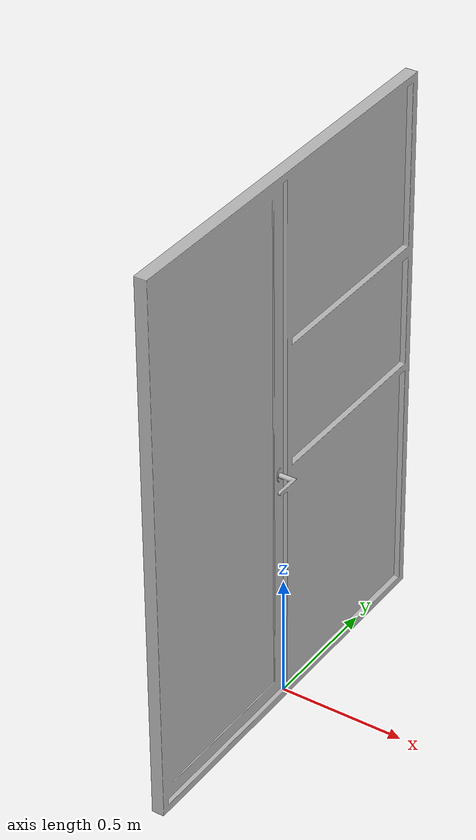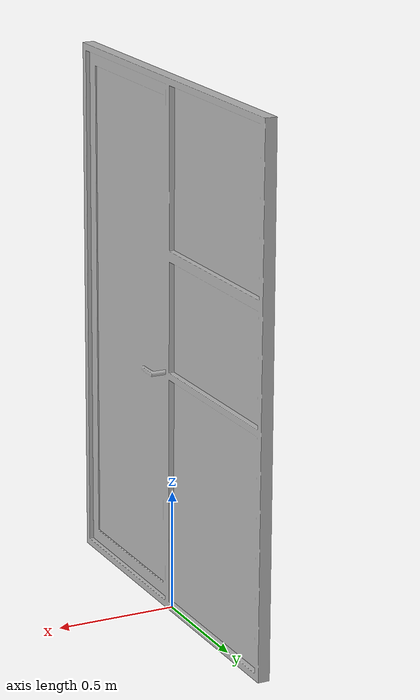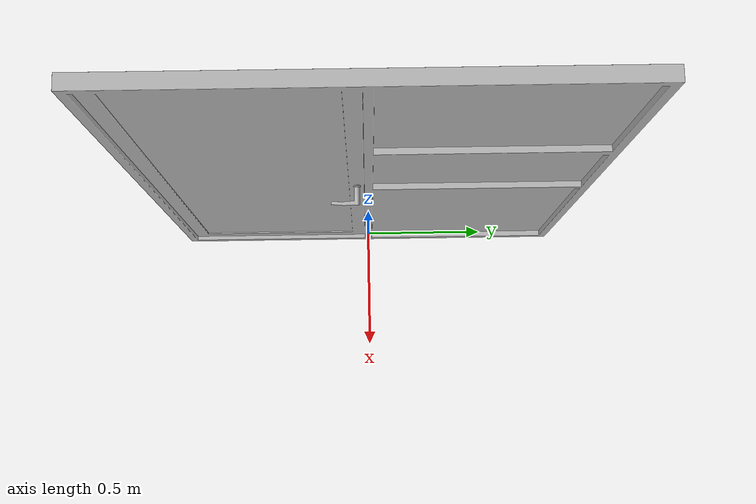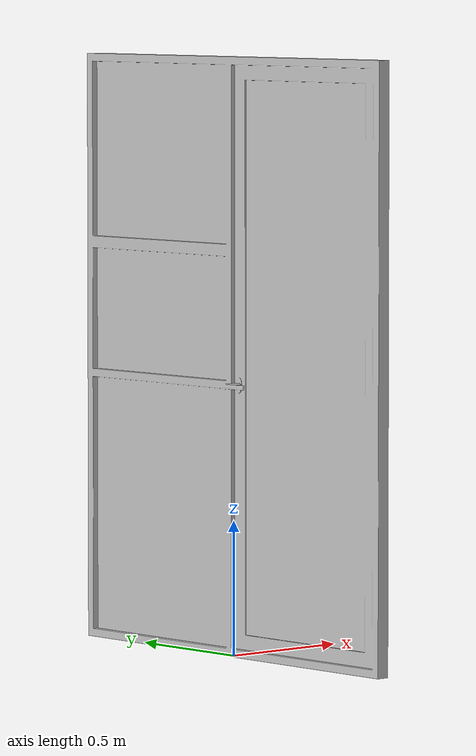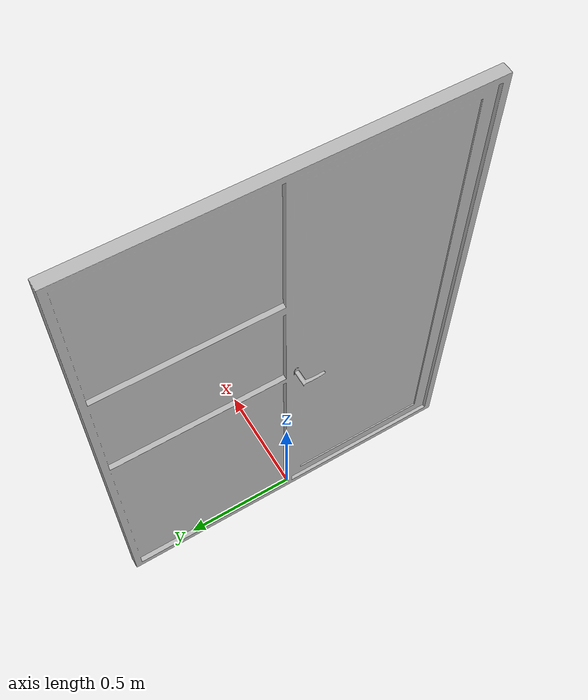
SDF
<?xml version='1.0'?>
<sdf version='1.4'>
  <model name='502'>
    <pose>0 0 0 0 0 0</pose>
    <static>true</static>
    <link name='link'>
      <collision name='collision'>
        <pose>0 0 0 0 0 0</pose>
        <geometry>
          <box>
            <size>0.160064 1.6 2</size>
          </box>
        </geometry>
      </collision>
      <visual name='visual'>
        <pose>0 0 0 0 0 0</pose>
        <geometry>
          <mesh><uri>model://502/502.dae</uri></mesh>
        </geometry>
      </visual>
    </link>
  </model>
</sdf>
